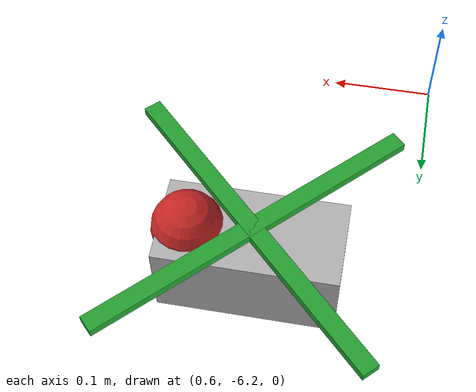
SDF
<sdf version="1.5">
 <world name="default">
  <model name="rotor_1">
   <pose>0.764081 -6.03882 -0.116802 0 -0 0</pose>
   <link name="link">
    <sensor name="gps" type="gps">
     <gps>
      <position_sensing>
       <horizontal>
        <noise type="gaussian_quantized">
         <mean>0</mean>
         <stddev>4</stddev>
         <bias_mean>0</bias_mean>
         <bias_stddev>0</bias_stddev>
         <precision>0.001</precision>
        </noise>
       </horizontal>
       <vertical>
        <noise type="gaussian_quantized">
         <mean>0</mean>
         <stddev>8</stddev>
         <bias_mean>0</bias_mean>
         <bias_stddev>0</bias_stddev>
         <precision>0.01</precision>
        </noise>
       </vertical>
      </position_sensing>
      <velocity_sensing>
       <horizontal>
        <noise type="gaussian_quantized">
         <mean>0</mean>
         <stddev>4</stddev>
         <bias_mean>0</bias_mean>
         <bias_stddev>0</bias_stddev>
         <precision>0.001</precision>
        </noise>
       </horizontal>
       <vertical>
        <noise type="gaussian_quantized">
         <mean>0</mean>
         <stddev>8</stddev>
         <bias_mean>0</bias_mean>
         <bias_stddev>0</bias_stddev>
         <precision>0.01</precision>
        </noise>
       </vertical>
      </velocity_sensing>
     </gps>
     <always_on>1</always_on>
    </sensor>
    <sensor name="imu" type="imu">
     <imu>
      <angular_velocity>
       <x>
        <noise type="gaussian">
         <mean>0</mean>
         <stddev>0.0002</stddev>
         <bias_mean>7.5e-06</bias_mean>
         <bias_stddev>8e-07</bias_stddev>
        </noise>
       </x>
       <y>
        <noise type="gaussian">
         <mean>0</mean>
         <stddev>0.0002</stddev>
         <bias_mean>7.5e-06</bias_mean>
         <bias_stddev>8e-07</bias_stddev>
        </noise>
       </y>
       <z>
        <noise type="gaussian">
         <mean>0</mean>
         <stddev>0.0002</stddev>
         <bias_mean>7.5e-06</bias_mean>
         <bias_stddev>8e-07</bias_stddev>
        </noise>
       </z>
      </angular_velocity>
      <linear_acceleration>
       <x>
        <noise type="gaussian">
         <mean>0</mean>
         <stddev>0.0002</stddev>
         <bias_mean>7.5e-06</bias_mean>
         <bias_stddev>8e-07</bias_stddev>
        </noise>
       </x>
       <y>
        <noise type="gaussian">
         <mean>0</mean>
         <stddev>0.0002</stddev>
         <bias_mean>7.5e-06</bias_mean>
         <bias_stddev>8e-07</bias_stddev>
        </noise>
       </y>
       <z>
        <noise type="gaussian">
         <mean>0</mean>
         <stddev>0.0002</stddev>
         <bias_mean>7.5e-06</bias_mean>
         <bias_stddev>8e-07</bias_stddev>
        </noise>
       </z>
      </linear_acceleration>
     </imu>
     <always_on>1</always_on>
    </sensor>
    <sensor name="camera" type="logical_camera">
     <logical_camera>
      <near>0.1</near>
      <far>50</far>
      <horizontal_fov>1.4656</horizontal_fov>
      <aspect_ratio>1.778</aspect_ratio>
     </logical_camera>
     <visualize>0</visualize>
     <always_on>1</always_on>
    </sensor>
    <kinematic>1</kinematic>
    <gravity>0</gravity>
    <collision name="collision"><geometry><box><size>0.2 0.1 0.1</size></box></geometry></collision>
    <visual name="visual"><geometry><box><size>0.2 0.1 0.1</size></box></geometry></visual>
    <visual name="visual_front">
     <pose>0.07 0 0.04 0 -0 0</pose>
     <geometry><sphere><radius>0.04</radius></sphere></geometry>
     <material><script><name>Gazebo/Red</name><uri>__default__</uri></script></material>
    </visual>
    <visual name="visual_blade1">
     <pose>0 0 0.055 0 -0 0.78539</pose>
     <geometry><box><size>0.4 0.02 0.01</size></box></geometry>
     <material><script><name>Gazebo/Green</name><uri>__default__</uri></script></material>
    </visual>
    <visual name="visual_blade2">
     <pose>0 0 0.055 0 -0 2.3562</pose>
     <geometry><box><size>0.4 0.02 0.01</size></box></geometry>
     <material><script><name>Gazebo/Green</name><uri>__default__</uri></script></material>
    </visual>
    <inertial>
     <inertia><ixx>1</ixx><ixy>0</ixy><ixz>0</ixz><iyy>1</iyy><iyz>0</iyz><izz>1</izz></inertia>
     <mass>1</mass>
    </inertial>
   </link>
   <plugin name="swarm_controller_rotor_1" filename="libTeamControllerPlugin.so">
    <type>rotor</type>
    <launch_vehicle>ground_1</launch_vehicle>
    <camera>link::camera</camera>
    <gps>link::gps</gps>
    <imu>link::imu</imu>
    <address>192.168.3.2</address>
    <num_messages>1</num_messages>
    <swarm_search_area>
     <min_relative_latitude_deg>-0.01</min_relative_latitude_deg>
     <max_relative_latitude_deg>0.01</max_relative_latitude_deg>
     <min_relative_longitude_deg>-0.01</min_relative_longitude_deg>
     <max_relative_longitude_deg>0.01</max_relative_longitude_deg>
    </swarm_search_area>
    <battery>
     <capacity>3500</capacity>
     <consumption>0</consumption>
     <consumption_factor>0.8</consumption_factor>
    </battery>
   </plugin>
  </model>
 </world>
</sdf>
